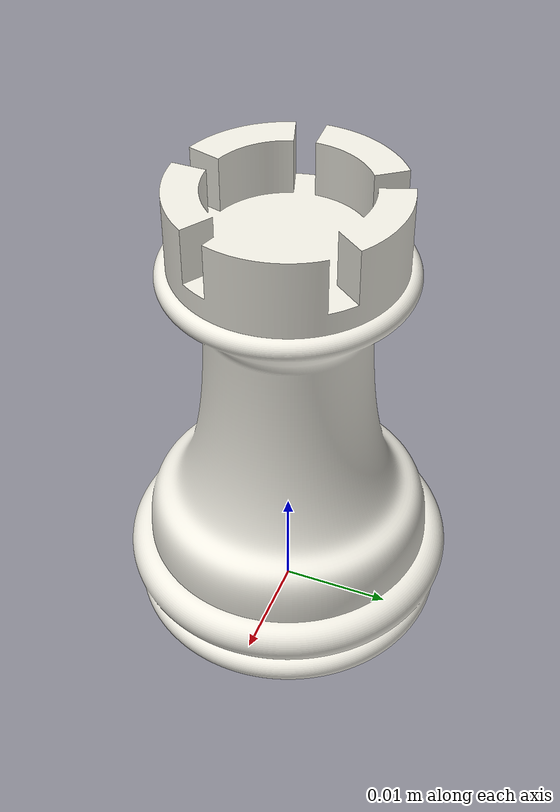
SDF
<?xml version="1.0"?>
<sdf version="1.9">
  <model name="white_rook">
    <static>false</static>
    <link name="piece">
      <inertial>
        <mass>0.055</mass>
        <inertia>
          <ixx>0.000018</ixx>
          <iyy>0.000018</iyy>
          <izz>0.000010</izz>
        </inertia>
      </inertial>
      <collision name="collision">
        <pose>0 0 0.0225 0 0 0</pose>
        <geometry>
          <cylinder>
            <radius>0.016</radius>
            <length>0.045</length>
          </cylinder>
        </geometry>
      </collision>
      <visual name="visual">
        <geometry>
          <mesh>
            <uri>model://chess_piece_meshes/meshes/rook.stl</uri>
            <scale>0.001 0.001 0.001</scale>
          </mesh>
        </geometry>
        <material>
          <ambient>0.93 0.92 0.88 1</ambient>
          <diffuse>0.93 0.92 0.88 1</diffuse>
          <specular>0.20 0.20 0.20 1</specular>
        </material>
      </visual>
    </link>
  </model>
</sdf>
